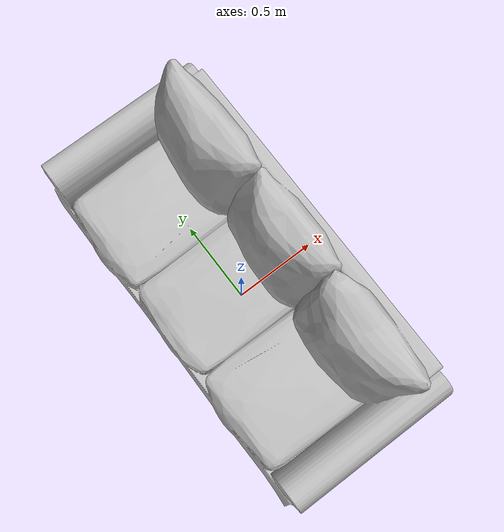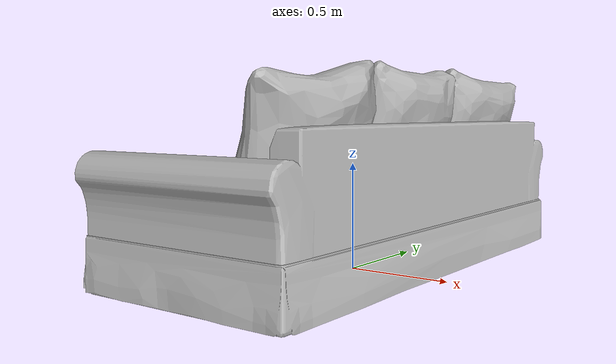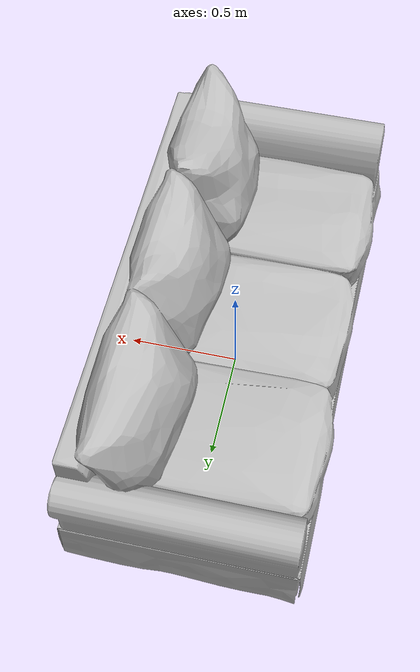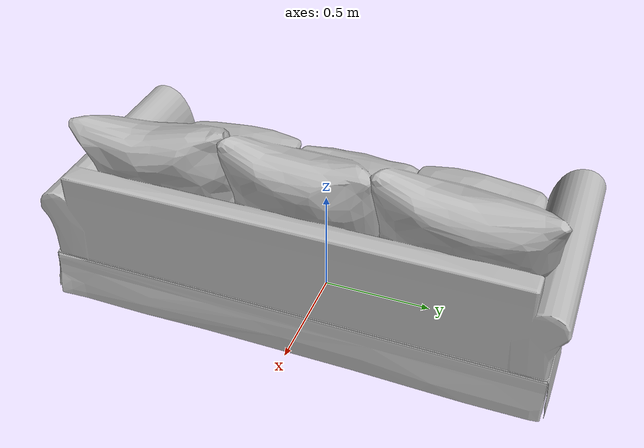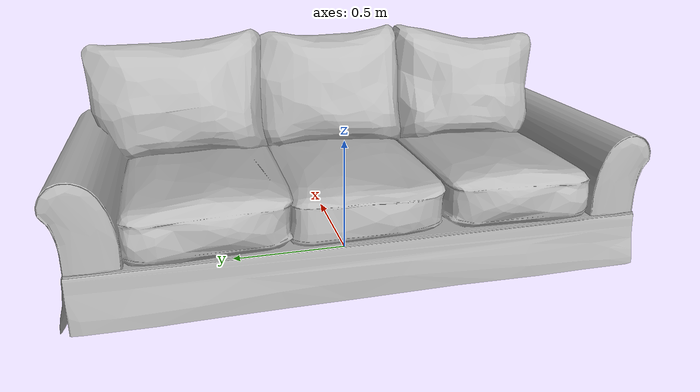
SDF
<?xml version="1.0" ?>
<sdf version="1.6">
  <model name="blue_sofa">
    <static>true</static>
    <link name="link">
      <collision name="collision">
        <pose>0 0 0 0 0 0</pose>
 	<geometry>
          <mesh>
            <uri>model://blue_sofa/meshes/blue_sofa.obj</uri>
          </mesh>
        </geometry>
      </collision>
      <visual name="visual">
        <pose>0 0 0 0 0 0</pose>
        <geometry>
          <mesh>
            <uri>model://blue_sofa/meshes/blue_sofa.obj</uri>
          </mesh>
        </geometry>
      </visual>
    </link>
  </model>
</sdf>
